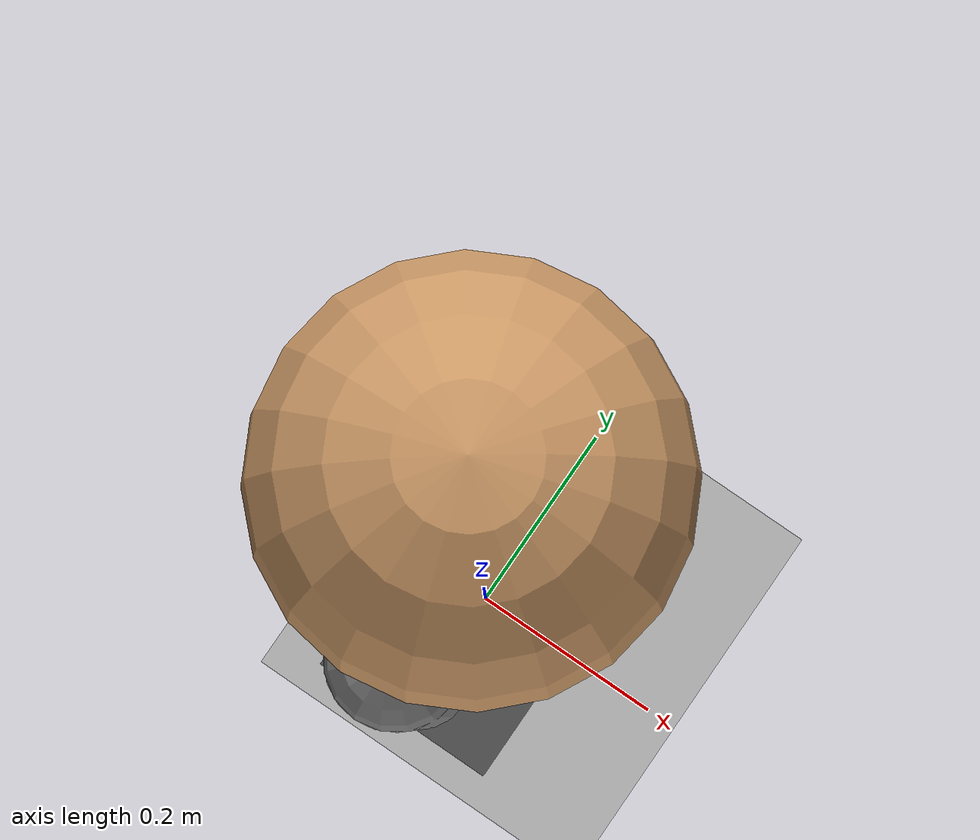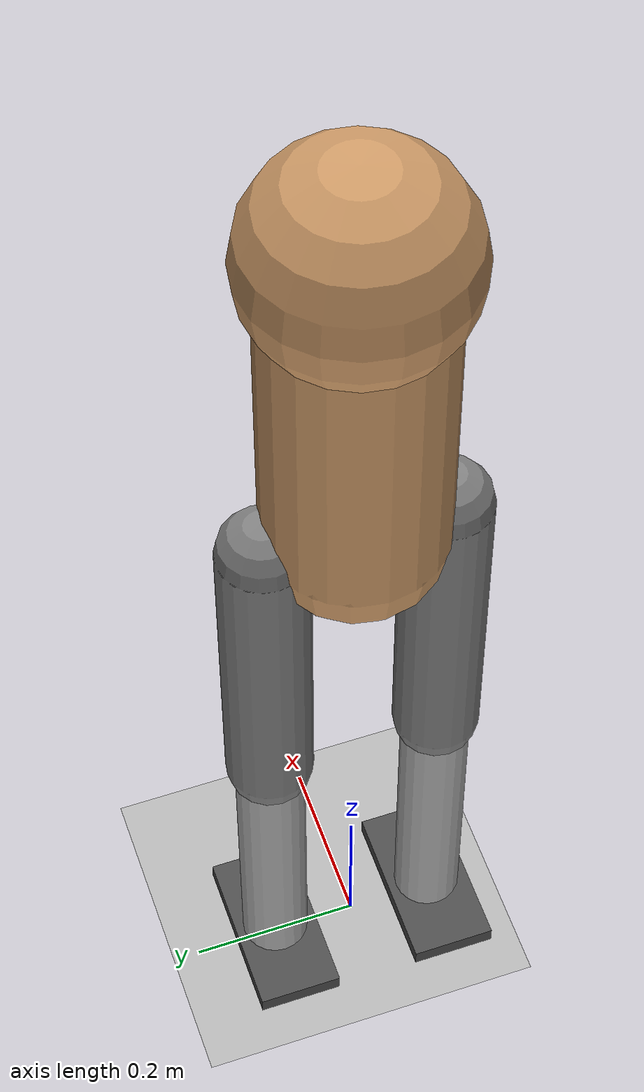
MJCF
<mujoco model="humanoid_hopper">
    <!-- Simulation Parameters -->
    <option gravity="0 0 -9.81" timestep="0.001" iterations="50"/>

    <worldbody>
        <!-- Torso -->
        <body name="torso" pos="0 0 1">
            <geom type="capsule" size="0.1 0.2" rgba="0.8 0.6 0.4 1" />
            <geom type="sphere" size="0.12" pos="0 0 0.2" rgba="0.8 0.6 0.4 1" />
            <joint type="free" name="root" />

            <!-- Left Leg -->
            <body name="thigh_left" pos="0 -0.1 -0.2">
                <geom type="capsule" fromto="0 0 0 0 0 -0.4" size="0.05" rgba="0.5 0.5 0.5 1" />
                <joint type="hinge" name="hip_left" axis="0 1 0" range="-30 30" damping="0.1" stiffness="0.1"/>
                <body name="leg_left" pos="0 0 -0.4">
                    <geom type="capsule" fromto="0 0 0 0 0 -0.4" size="0.04" rgba="0.7 0.7 0.7 1" />
                    <joint type="hinge" name="knee_left" axis="0 1 0" range="30 150" damping="0.1" stiffness="0.1"/>
                    <body name="foot_left" pos="0 0 -0.4">
                        <geom type="box" size="0.1 0.05 0.02" rgba="0.3 0.3 0.3 1" friction="1 0.1 0.1"/>
                        <joint type="hinge" name="ankle_left" axis="0 1 0" range="-20 20" damping="0.1" stiffness="0.1" />
                    </body>
                </body>
            </body>

            <!-- Right Leg -->
            <body name="thigh_right" pos="0 0.1 -0.2">
                <geom type="capsule" fromto="0 0 0 0 0 -0.4" size="0.05" rgba="0.5 0.5 0.5 1" />
                <joint type="hinge" name="hip_right" axis="0 1 0" range="-30 30" damping="0.1" stiffness="0.1"/>
                <body name="leg_right" pos="0 0 -0.4">
                    <geom type="capsule" fromto="0 0 0 0 0 -0.4" size="0.04" rgba="0.7 0.7 0.7 1" />
                    <joint type="hinge" name="knee_right" axis="0 1 0" range="30 150" damping="0.1" stiffness="0.1"/>
                    <body name="foot_right" pos="0 0 -0.4">
                        <geom type="box" size="0.1 0.05 0.02" rgba="0.3 0.3 0.3 1" friction="1 0.1 0.1"/>
                        <joint type="hinge" name="ankle_right" axis="0 1 0" range="-20 20" damping="0.1" stiffness="0.1" />
                    </body>
                </body>
            </body>
        </body>

        <!-- Ground Plane -->
        <body name="ground" pos="0 0 0">
            <geom type="plane" size="10 10 0.1" rgba="0.7 0.7 0.7 1" />
        </body>

    </worldbody>

    <!-- Actuators -->
    <actuator>
        <!-- Left Leg Motors -->
        <motor joint="hip_left" gear="100" />
        <motor joint="knee_left" gear="100" />
        <motor joint="ankle_left" gear="50" />

        <!-- Right Leg Motors -->
        <motor joint="hip_right" gear="100" />
        <motor joint="knee_right" gear="100" />
        <motor joint="ankle_right" gear="50" />
    </actuator>

    <!-- Sensors for Feedback -->
    <sensor>
        <!-- Joint Position Sensors -->
        <jointpos joint="hip_left" />
        <jointpos joint="knee_left" />
        <jointpos joint="ankle_left" />
        <jointpos joint="hip_right" />
        <jointpos joint="knee_right" />
        <jointpos joint="ankle_right" />

        <!-- Joint Velocity Sensors -->
        <jointvel joint="hip_left" />
        <jointvel joint="knee_left" />
        <jointvel joint="ankle_left" />
        <jointvel joint="hip_right" />
        <jointvel joint="knee_right" />
        <jointvel joint="ankle_right" />
    </sensor>
</mujoco>
